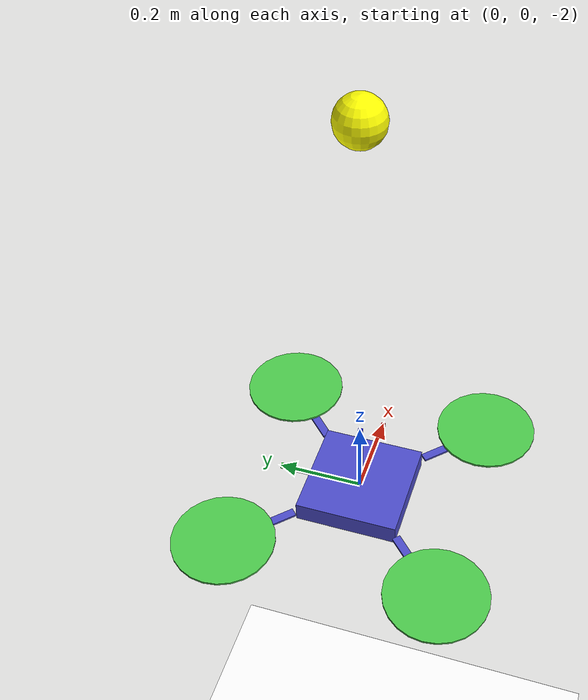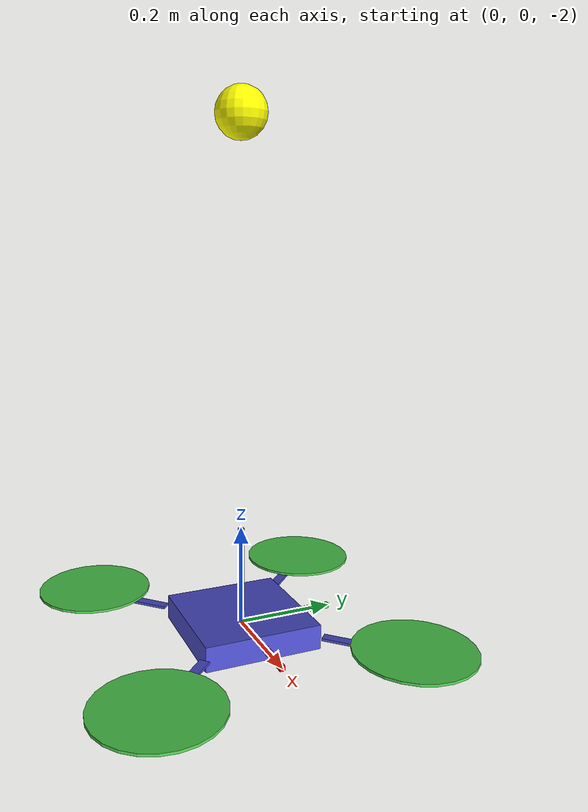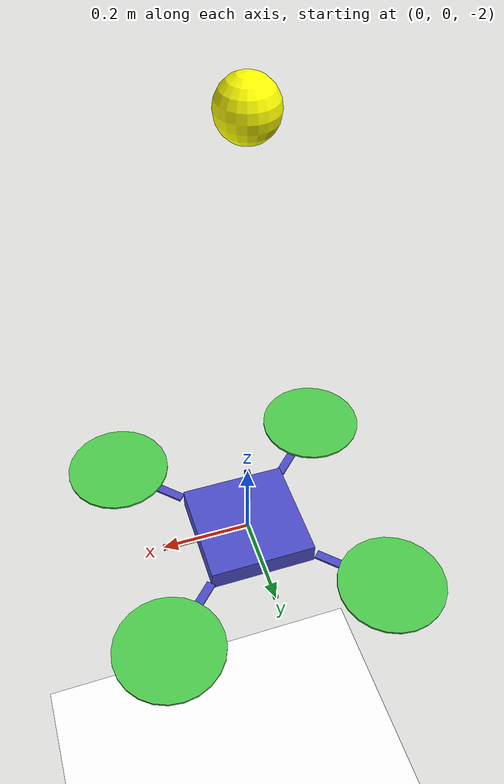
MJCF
<!-- written by Inkyu Sa, enddl22@gmail.com -->
<mujoco model="bbq">
    <compiler inertiafromgeom="auto" coordinate="local"/>
    <option timestep='0.001' iterations="50" solver="PGS" gravity="0 0 -9.81" density="1" viscosity="1e-5">
        <flag energy="enable"/>
    </option>
    <visual>
        <map fogstart="3" fogend="5" force="0.1" znear="0.1"/>
        <quality shadowsize="2048"/>
        <global offwidth="800" offheight="800"/>
    </visual>
    <asset>
        <texture type="skybox" builtin="gradient" width="128" height="128" rgb1=".4 .6 .8"
            rgb2="0 0 0"/>
        <texture name="texgeom" type="cube" builtin="flat" mark="cross" width="127" height="1278"
            rgb1="0.8 0.6 0.4" rgb2="0.8 0.6 0.4" markrgb="1 1 1" random="0.01"/>
        <texture name="texplane" type="2d" builtin="checker" rgb1=".2 .3 .4" rgb2=".1 0.15 0.2"
            width="512" height="512"/>
        <material name='MatPlane' reflectance='0.5' texture="texplane" texrepeat="1 1" texuniform="true"/>
        <material name='geom' texture="texgeom" texuniform="true"/>
    </asset>
    <worldbody>
        <light directional='true' diffuse='.8 .8 .8' specular='0.3 0.3 0.3' pos='0 0 4.0' dir='0 -.15 -1'/>
        <geom name="floor" pos="0 0 -4" size="10 10 .2" type="plane" material="MatPlane" conaffinity="1" rgba="1 1 1 1" condim="3"/>
        <body name="quadrotor" pos="0 0 -2">
            <geom name="core" type="box" pos="0 0 0" quat = "1. 0. 0. 0" size="0.12 0.12 0.025"  rgba="0.3 0.3 0.8 1" mass = ".2" contype="1" conaffinity="1" condim="3"/>

            <geom name="a00" type="box" pos="0.18 0.18 0.0" size="0.08 0.01 0.0025"  quat = ".924 0.0 0.0 0.383" rgba="0.3 0.3 0.8 1" mass = ".025" contype="0" conaffinity="0"/>
            <geom name="a10" type="box" pos="0.18 -0.18 0.0" size="0.08 0.01 0.0025"  quat = ".383 0.0 0.0 0.924" rgba="0.3 0.3 0.8 1" mass = ".025" contype="0" conaffinity="0"/>
            <geom name="a20" type="box" pos="-0.18 -0.18 0.0" size="0.08 0.01 0.0025"  quat = "-.383 0.0 0.0 0.924" rgba="0.3 0.3 0.8 1" mass = ".025" contype="0" conaffinity="0"/>
            <geom name="a30" type="box" pos="-0.18 0.18 0.0" size="0.08 0.01 0.0025"  quat = ".924 0.0 0.0 -0.383" rgba="0.3 0.3 0.8 1" mass = ".025" contype="0" conaffinity="0"/>

            <joint name="root"   type="free" damping="0" armature="0" pos="0 0 0" />

            <!-- Actuator sites to attach actuators  -->
            <site name="thrust" type="box" pos="0 0 0"  size="0.12 0.12 0.025"  quat = "1.0 0.0 0.0 0." rgba="0.3 0.8 0.3 1"/>
            <site name="rateX" type="box" pos="0 0 0" quat = "1. 0. 0. 0."  size="0.12 0.12 0.025" rgba="0.3 0.8 0.3 1" />
            <site name="rateY" type="box" pos="0 0 0" quat = "1. 0. 0. 0."  size="0.12 0.12 0.025" rgba="0.3 0.8 0.3 1" />
            <site name="rateZ" type="box" pos="0 0 0" quat = "1. 0. 0. 0."  size="0.12 0.12 0.025" rgba="0.3 0.8 0.3 1" />

            <!-- Thruster geometries for collisions since site's are excluded from collision checking -->
            <geom name="thruster0" type="cylinder" pos=" 0.25  0.25  0.01" size="0.12 0.0025"  quat = "1.0 0.0 0.0 0." rgba="0.3 0.8 0.3 1" mass = ".025" contype="0" conaffinity="0"/>
            <geom name="thruster1" type="cylinder" pos=" 0.25 -0.25  0.01" size="0.12 0.0025"  quat = "1.0 0.0 0.0 0." rgba="0.3 0.8 0.3 1" mass = ".025" contype="0" conaffinity="0"/>
            <geom name="thruster2" type="cylinder" pos="-0.25 -0.25  0.01" size="0.12 0.0025"  quat = "1.0 0.0 0.0 0." rgba="0.3 0.8 0.3 1" mass = ".025" contype="0" conaffinity="0"/>
            <geom name="thruster3" type="cylinder" pos="-0.25  0.25  0.01" size="0.12 0.0025"  quat = "1.0 0.0 0.0 0." rgba="0.3 0.8 0.3 1" mass = ".025" contype="0" conaffinity="0"/>

            <!-- Visualization of the coordinate frame -->
            <site name="qcX" type="box" pos="0.1 0.0 0.0" size="0.1 0.005 0.005"  quat = " 1.000  0.0  0.0    0."     rgba="1 0 0 1" />
            <site name="qcY" type="box" pos="0.0 0.1 0.0" size="0.1 0.005 0.005"  quat = " 0.707  0.0  0.0    0.707"  rgba="0 1 0 1" />
            <site name="qcZ" type="box" pos="0.0 0.0 0.1" size="0.1 0.005 0.005"  quat = "-0.707  0.0  0.707  0."     rgba="0 0 1 1" />
        </body>
        <body name="ball" pos="0 0 -1">
            <joint name="ball_joint" type="free" armature='0' damping="0" limited="false"/>
            <geom name="ball" type="sphere" size=".05" solref="-100000 0" mass = ".01" contype="1" conaffinity="1" condim="3" rgba="1 1 0 1"/>
        </body>
    </worldbody>
    <actuator>
        <motor ctrllimited="true" ctrlrange="0.0 7.0" gear="0  0. 1. 0. 0. 0." site="thrust"/>
        <velocity ctrllimited="true" ctrlrange="-1 1" gear="0. 0. 0. 1. 0. 0." kv="0.1" site="rateX"/>
        <velocity ctrllimited="true" ctrlrange="-1 1" gear="0. 0. 0. 0. 1. 0." kv="0.1" site="rateY"/>
        <velocity ctrllimited="true" ctrlrange="-1 1" gear="0. 0. 0. 0. 0. 1." kv="0.1" site="rateZ"/>
    </actuator>
</mujoco>
